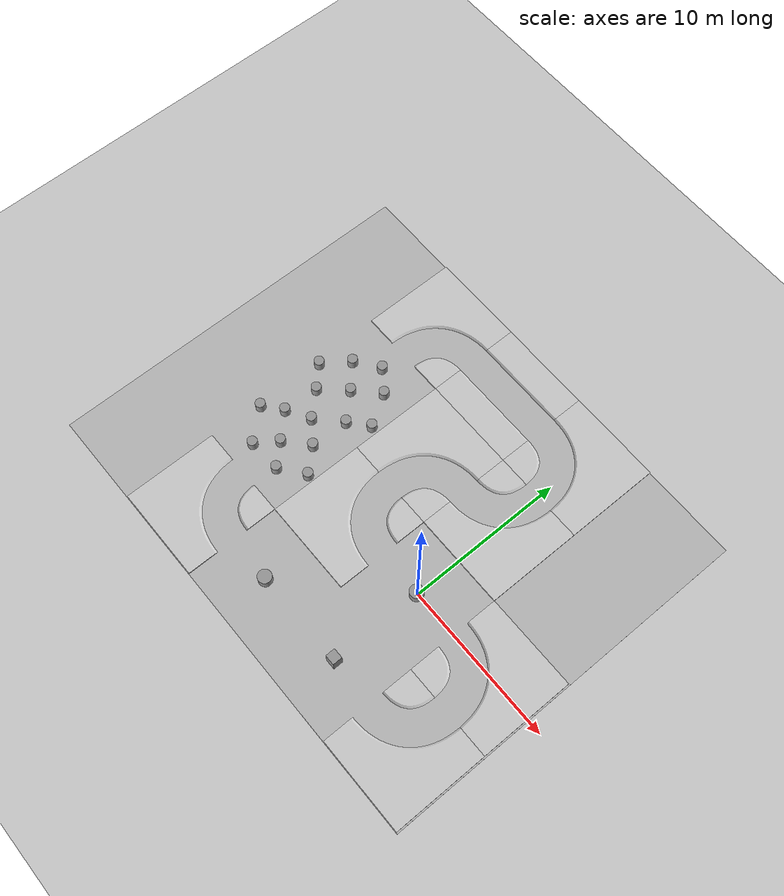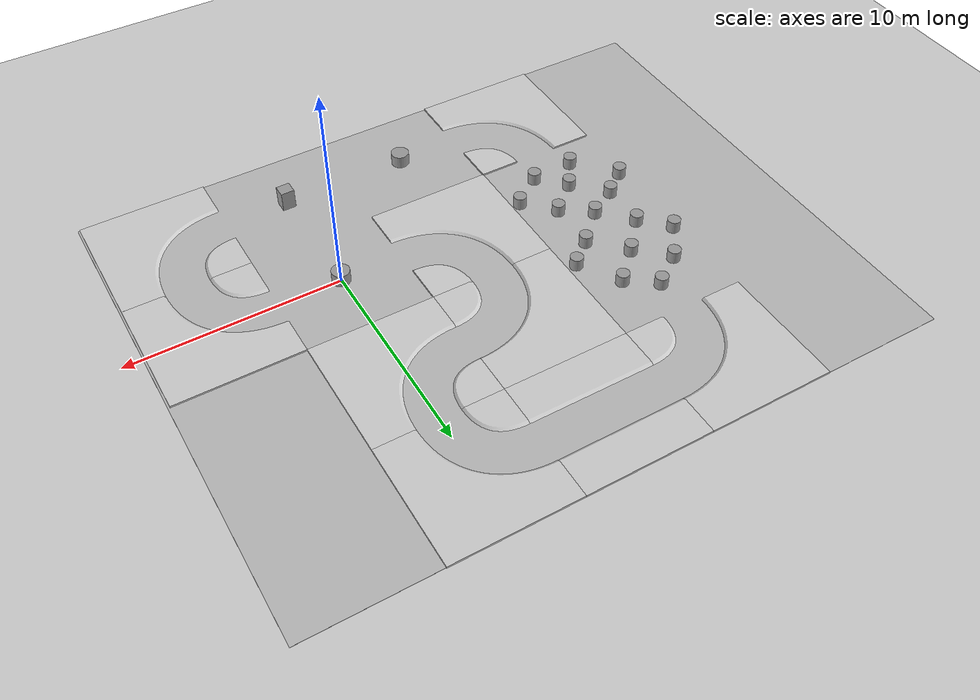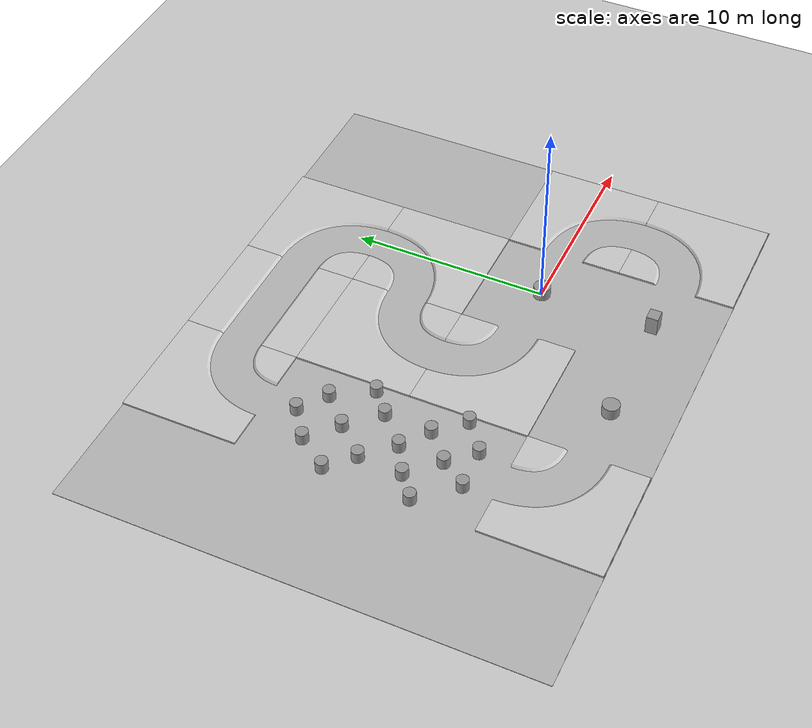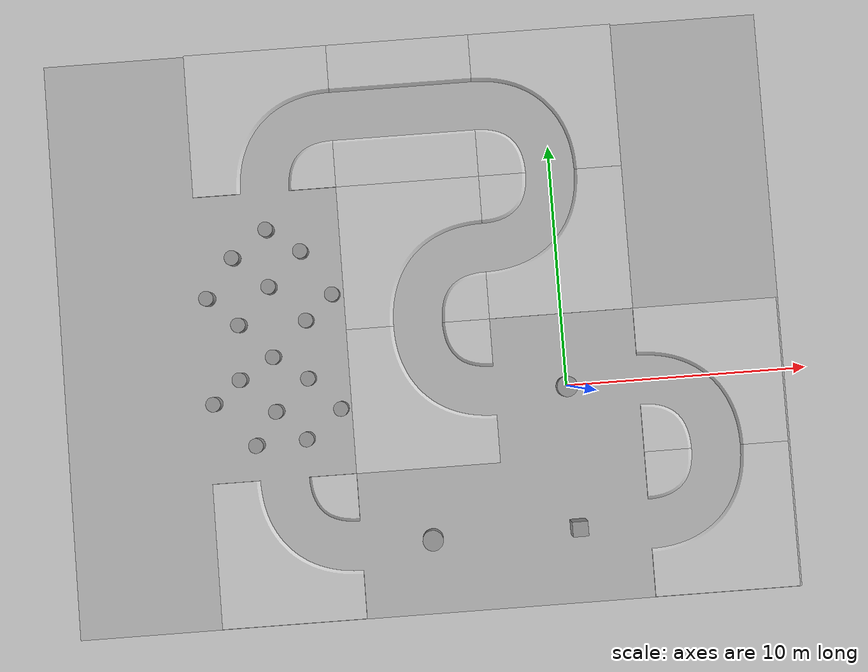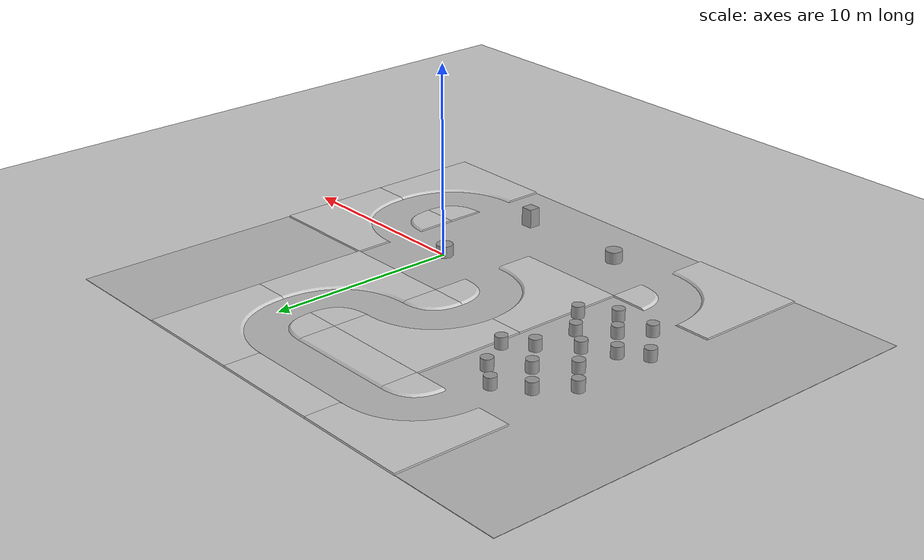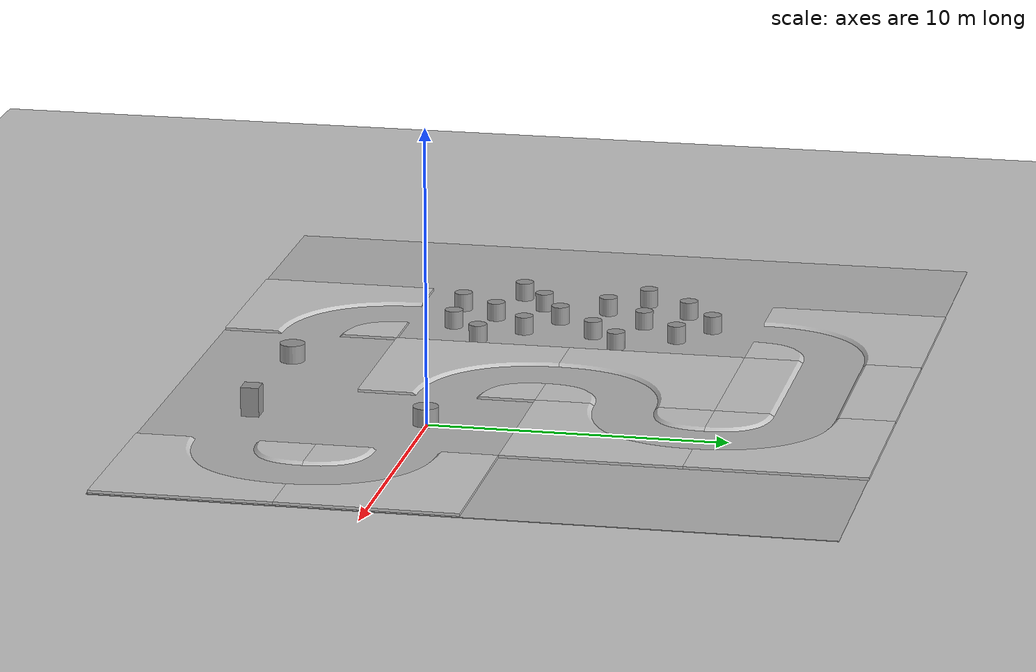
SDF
<sdf version="1.6">
 <world name="default">
  <light name="sun" type="directional">
   <pose>0 0 10 0 -0 0</pose>
   <diffuse>0.8 0.8 0.8 1</diffuse>
   <specular>0.2 0.2 0.2 1</specular>
   <attenuation>
    <range>1000</range>
    <constant>0.9</constant>
    <linear>0.01</linear>
    <quadratic>0.001</quadratic>
   </attenuation>
   <direction>-0.5 0.1 -0.9</direction>
  </light>
  <model name="ground_plane">
   <pose>0 0 -0.01 0 -0 0</pose>
   <static>1</static>
   <link name="link">
    <collision name="collision">
     <geometry><plane><normal>0 0 1</normal><size>100 100</size></plane></geometry>
     <surface>
      <contact><collide_bitmask>65535</collide_bitmask></contact>
      <friction><ode><mu>1</mu><mu2>1</mu2></ode></friction>
     </surface>
    </collision>
    <visual name="visual">
     <cast_shadows>0</cast_shadows>
     <geometry><plane><normal>0 0 1</normal><size>100 100</size></plane></geometry>
     <material>
      <script><uri>file://media/materials/scripts/gazebo.material</uri><name>Gazebo/Grey</name></script>
     </material>
    </visual>
   </link>
  </model>
  <gravity>0 0 -9.8</gravity>
  <magnetic_field>6e-06 2.3e-05 -4.2e-05</magnetic_field>
  <atmosphere type="adiabatic"/>
  <physics name="default_physics" default="0" type="ode">
   <max_step_size>0.001</max_step_size>
   <real_time_factor>1</real_time_factor>
   <real_time_update_rate>1000</real_time_update_rate>
  </physics>
  <scene><ambient>0.4 0.4 0.4 1</ambient><background>0.7 0.7 0.7 1</background><shadows>1</shadows></scene>
  <spherical_coordinates>
   <surface_model>EARTH_WGS84</surface_model>
   <latitude_deg>0</latitude_deg>
   <longitude_deg>0</longitude_deg>
   <elevation>0</elevation>
   <heading_deg>0</heading_deg>
  </spherical_coordinates>
  <model name="turn_block">
   <static>1</static>
   <link name="turn_block">
    <collision name="collision">
     <geometry><mesh><uri>model://turn_block/meshes/turn_block.dae</uri><scale>1 1 1</scale></mesh></geometry>
    </collision>
    <visual name="visual">
     <geometry><mesh><uri>model://turn_block/meshes/turn_block.dae</uri><scale>1 1 1</scale></mesh></geometry>
     <material>
      <ambient>0.7 0.7 0.7 1</ambient>
      <diffuse>0.8 0.8 0.8 1</diffuse>
      <specular>0.1 0.1 0.1 1</specular>
      <emissive>0 0 0 0</emissive>
     </material>
    </visual>
   </link>
   <pose>-6 0 0 0 -0 0</pose>
  </model>
  <model name="turn_block_0">
   <static>1</static>
   <link name="turn_block">
    <collision name="collision">
     <geometry><mesh><uri>model://turn_block/meshes/turn_block.dae</uri><scale>1 1 1</scale></mesh></geometry>
    </collision>
    <visual name="visual">
     <geometry><mesh><uri>model://turn_block/meshes/turn_block.dae</uri><scale>1 1 1</scale></mesh></geometry>
     <material>
      <ambient>0.7 0.7 0.7 1</ambient>
      <diffuse>0.8 0.8 0.8 1</diffuse>
      <specular>0.1 0.1 0.1 1</specular>
      <emissive>0 0 0 0</emissive>
     </material>
    </visual>
   </link>
   <pose>-6 6 0 0 0 -1.5707</pose>
  </model>
  <model name="turn_block_1">
   <static>1</static>
   <link name="turn_block">
    <collision name="collision">
     <geometry><mesh><uri>model://turn_block/meshes/turn_block.dae</uri><scale>1 1 1</scale></mesh></geometry>
    </collision>
    <visual name="visual">
     <geometry><mesh><uri>model://turn_block/meshes/turn_block.dae</uri><scale>1 1 1</scale></mesh></geometry>
     <material>
      <ambient>0.7 0.7 0.7 1</ambient>
      <diffuse>0.8 0.8 0.8 1</diffuse>
      <specular>0.1 0.1 0.1 1</specular>
      <emissive>0 0 0 0</emissive>
     </material>
    </visual>
   </link>
   <pose>0 6 0 0 -0 1.5707</pose>
  </model>
  <model name="straight_block">
   <static>1</static>
   <link name="straight_block">
    <collision name="collision">
     <geometry>
      <mesh><uri>model://straight_block/meshes/straight_block.dae</uri><scale>1 1 1</scale></mesh>
     </geometry>
    </collision>
    <visual name="visual">
     <geometry>
      <mesh><uri>model://straight_block/meshes/straight_block.dae</uri><scale>1 1 1</scale></mesh>
     </geometry>
     <material>
      <ambient>0.7 0.7 0.7 1</ambient>
      <diffuse>0.8 0.8 0.8 1</diffuse>
      <specular>0.1 0.1 0.1 1</specular>
      <emissive>0 0 0 0</emissive>
     </material>
    </visual>
   </link>
   <pose>-6 12 0 0 -0 3.14159</pose>
  </model>
  <model name="unit_cylinder">
   <pose>-0.026888 -0.042582 0.313536 0 -0 0</pose>
   <link name="link">
    <inertial>
     <mass>1</mass>
     <inertia><ixx>0.145833</ixx><ixy>0</ixy><ixz>0</ixz><iyy>0.145833</iyy><iyz>0</iyz><izz>0.125</izz></inertia>
    </inertial>
    <collision name="collision">
     <geometry><cylinder><radius>0.428545</radius><length>0.627091</length></cylinder></geometry>
    </collision>
    <visual name="visual">
     <geometry><cylinder><radius>0.428545</radius><length>0.627091</length></cylinder></geometry>
     <material>
      <script><name>Gazebo/Grey</name><uri>file://media/materials/scripts/gazebo.material</uri></script>
     </material>
    </visual>
   </link>
  </model>
  <model name="turn_block_2">
   <static>1</static>
   <link name="turn_block">
    <collision name="collision">
     <geometry><mesh><uri>model://turn_block/meshes/turn_block.dae</uri><scale>1 1 1</scale></mesh></geometry>
    </collision>
    <visual name="visual">
     <geometry><mesh><uri>model://turn_block/meshes/turn_block.dae</uri><scale>1 1 1</scale></mesh></geometry>
     <material>
      <ambient>0.7 0.7 0.7 1</ambient>
      <diffuse>0.8 0.8 0.8 1</diffuse>
      <specular>0.1 0.1 0.1 1</specular>
      <emissive>0 0 0 0</emissive>
     </material>
    </visual>
   </link>
   <pose>6 0 0 0 -0 3.14159</pose>
  </model>
  <model name="turn_block_3">
   <static>1</static>
   <link name="turn_block">
    <collision name="collision">
     <geometry><mesh><uri>model://turn_block/meshes/turn_block.dae</uri><scale>1 1 1</scale></mesh></geometry>
    </collision>
    <visual name="visual">
     <geometry><mesh><uri>model://turn_block/meshes/turn_block.dae</uri><scale>1 1 1</scale></mesh></geometry>
     <material>
      <ambient>0.7 0.7 0.7 1</ambient>
      <diffuse>0.8 0.8 0.8 1</diffuse>
      <specular>0.1 0.1 0.1 1</specular>
      <emissive>0 0 0 0</emissive>
     </material>
    </visual>
   </link>
   <pose>6 -6 0 0 -0 1.5707</pose>
  </model>
  <model name="turn_block_4">
   <static>1</static>
   <link name="turn_block">
    <collision name="collision">
     <geometry><mesh><uri>model://turn_block/meshes/turn_block.dae</uri><scale>1 1 1</scale></mesh></geometry>
    </collision>
    <visual name="visual">
     <geometry><mesh><uri>model://turn_block/meshes/turn_block.dae</uri><scale>1 1 1</scale></mesh></geometry>
     <material>
      <ambient>0.7 0.7 0.7 1</ambient>
      <diffuse>0.8 0.8 0.8 1</diffuse>
      <specular>0.1 0.1 0.1 1</specular>
      <emissive>0 0 0 0</emissive>
     </material>
    </visual>
   </link>
   <pose>-12 -6 0 0 -0 0</pose>
  </model>
  <model name="unit_box">
   <pose>0.012751 -5.86109 0.499996 7e-06 7e-06 0.009645</pose>
   <link name="link">
    <inertial>
     <mass>1</mass>
     <inertia>
      <ixx>0.166667</ixx>
      <ixy>0</ixy>
      <ixz>0</ixz>
      <iyy>0.166667</iyy>
      <iyz>0</iyz>
      <izz>0.166667</izz>
     </inertia>
    </inertial>
    <collision name="collision"><geometry><box><size>0.64607 0.606298 1</size></box></geometry></collision>
    <visual name="visual">
     <geometry><box><size>0.64607 0.606298 1</size></box></geometry>
     <material>
      <script><name>Gazebo/Grey</name><uri>file://media/materials/scripts/gazebo.material</uri></script>
     </material>
    </visual>
   </link>
  </model>
  <model name="turn_block_5">
   <static>1</static>
   <link name="turn_block">
    <collision name="collision">
     <geometry><mesh><uri>model://turn_block/meshes/turn_block.dae</uri><scale>1 1 1</scale></mesh></geometry>
    </collision>
    <visual name="visual">
     <geometry><mesh><uri>model://turn_block/meshes/turn_block.dae</uri><scale>1 1 1</scale></mesh></geometry>
     <material>
      <ambient>0.7 0.7 0.7 1</ambient>
      <diffuse>0.8 0.8 0.8 1</diffuse>
      <specular>0.1 0.1 0.1 1</specular>
      <emissive>0 0 0 0</emissive>
     </material>
    </visual>
   </link>
   <pose>0 12 0 0 0 -3.14159</pose>
  </model>
  <model name="turn_block_6">
   <static>1</static>
   <link name="turn_block">
    <collision name="collision">
     <geometry><mesh><uri>model://turn_block/meshes/turn_block.dae</uri><scale>1 1 1</scale></mesh></geometry>
    </collision>
    <visual name="visual">
     <geometry><mesh><uri>model://turn_block/meshes/turn_block.dae</uri><scale>1 1 1</scale></mesh></geometry>
     <material>
      <ambient>0.7 0.7 0.7 1</ambient>
      <diffuse>0.8 0.8 0.8 1</diffuse>
      <specular>0.1 0.1 0.1 1</specular>
      <emissive>0 0 0 0</emissive>
     </material>
    </visual>
   </link>
   <pose>-12 12 0 0 0 -1.5707</pose>
  </model>
  <model name="unit_cylinder_clone">
   <pose>-6.02392 -5.9326 0.313536 0 -0 0</pose>
   <link name="link">
    <inertial>
     <mass>1</mass>
     <inertia><ixx>0.145833</ixx><ixy>0</ixy><ixz>0</ixz><iyy>0.145833</iyy><iyz>0</iyz><izz>0.125</izz></inertia>
    </inertial>
    <collision name="collision">
     <geometry><cylinder><radius>0.428545</radius><length>0.627091</length></cylinder></geometry>
    </collision>
    <visual name="visual">
     <geometry><cylinder><radius>0.428545</radius><length>0.627091</length></cylinder></geometry>
     <material>
      <script><name>Gazebo/Grey</name><uri>file://media/materials/scripts/gazebo.material</uri></script>
     </material>
    </visual>
   </link>
  </model>
  <model name="unit_cylinder_clone_0">
   <pose>-12.0029 7.38383 0.313543 1e-06 1e-06 0</pose>
   <link name="link">
    <inertial>
     <mass>1</mass>
     <inertia><ixx>0.145833</ixx><ixy>0</ixy><ixz>0</ixz><iyy>0.145833</iyy><iyz>0</iyz><izz>0.125</izz></inertia>
    </inertial>
    <collision name="collision">
     <geometry><cylinder><radius>0.308912</radius><length>0.627091</length></cylinder></geometry>
    </collision>
    <visual name="visual">
     <geometry><cylinder><radius>0.308912</radius><length>0.627091</length></cylinder></geometry>
     <material>
      <script><name>Gazebo/Grey</name><uri>file://media/materials/scripts/gazebo.material</uri></script>
     </material>
    </visual>
   </link>
  </model>
  <model name="unit_cylinder_clone_0_clone">
   <pose>-10.6322 6.38158 0.313545 0 -0 0</pose>
   <link name="link">
    <inertial>
     <mass>1</mass>
     <inertia><ixx>0.145833</ixx><ixy>0</ixy><ixz>0</ixz><iyy>0.145833</iyy><iyz>0</iyz><izz>0.125</izz></inertia>
    </inertial>
    <collision name="collision">
     <geometry><cylinder><radius>0.308912</radius><length>0.627091</length></cylinder></geometry>
    </collision>
    <visual name="visual">
     <geometry><cylinder><radius>0.308912</radius><length>0.627091</length></cylinder></geometry>
     <material>
      <script><name>Gazebo/Grey</name><uri>file://media/materials/scripts/gazebo.material</uri></script>
     </material>
    </visual>
   </link>
  </model>
  <model name="unit_cylinder_clone_0_clone_0">
   <pose>-13.4768 6.30625 0.313536 0 -0 0</pose>
   <link name="link">
    <inertial>
     <mass>1</mass>
     <inertia><ixx>0.145833</ixx><ixy>0</ixy><ixz>0</ixz><iyy>0.145833</iyy><iyz>0</iyz><izz>0.125</izz></inertia>
    </inertial>
    <collision name="collision">
     <geometry><cylinder><radius>0.308912</radius><length>0.627091</length></cylinder></geometry>
    </collision>
    <visual name="visual">
     <geometry><cylinder><radius>0.308912</radius><length>0.627091</length></cylinder></geometry>
     <material>
      <script><name>Gazebo/Grey</name><uri>file://media/materials/scripts/gazebo.material</uri></script>
     </material>
    </visual>
   </link>
  </model>
  <model name="unit_cylinder_clone_0_clone_1">
   <pose>-12.0501 5.00167 0.313545 0 -0 0</pose>
   <link name="link">
    <inertial>
     <mass>1</mass>
     <inertia><ixx>0.145833</ixx><ixy>0</ixy><ixz>0</ixz><iyy>0.145833</iyy><iyz>0</iyz><izz>0.125</izz></inertia>
    </inertial>
    <collision name="collision">
     <geometry><cylinder><radius>0.308912</radius><length>0.627091</length></cylinder></geometry>
    </collision>
    <visual name="visual">
     <geometry><cylinder><radius>0.308912</radius><length>0.627091</length></cylinder></geometry>
     <material>
      <script><name>Gazebo/Grey</name><uri>file://media/materials/scripts/gazebo.material</uri></script>
     </material>
    </visual>
   </link>
  </model>
  <model name="unit_cylinder_clone_0_clone_2">
   <pose>-10.6054 3.49335 0.313536 0 -0 0</pose>
   <link name="link">
    <inertial>
     <mass>1</mass>
     <inertia><ixx>0.145833</ixx><ixy>0</ixy><ixz>0</ixz><iyy>0.145833</iyy><iyz>0</iyz><izz>0.125</izz></inertia>
    </inertial>
    <collision name="collision">
     <geometry><cylinder><radius>0.308912</radius><length>0.627091</length></cylinder></geometry>
    </collision>
    <visual name="visual">
     <geometry><cylinder><radius>0.308912</radius><length>0.627091</length></cylinder></geometry>
     <material>
      <script><name>Gazebo/Grey</name><uri>file://media/materials/scripts/gazebo.material</uri></script>
     </material>
    </visual>
   </link>
  </model>
  <model name="unit_cylinder_clone_0_clone_3">
   <pose>-13.4058 3.50326 0.313536 0 -0 0</pose>
   <link name="link">
    <inertial>
     <mass>1</mass>
     <inertia><ixx>0.145833</ixx><ixy>0</ixy><ixz>0</ixz><iyy>0.145833</iyy><iyz>0</iyz><izz>0.125</izz></inertia>
    </inertial>
    <collision name="collision">
     <geometry><cylinder><radius>0.308912</radius><length>0.627091</length></cylinder></geometry>
    </collision>
    <visual name="visual">
     <geometry><cylinder><radius>0.308912</radius><length>0.627091</length></cylinder></geometry>
     <material>
      <script><name>Gazebo/Grey</name><uri>file://media/materials/scripts/gazebo.material</uri></script>
     </material>
    </visual>
   </link>
  </model>
  <model name="unit_cylinder_clone_0_clone_4">
   <pose>-12.0669 2.07856 0.313545 0 -0 0</pose>
   <link name="link">
    <inertial>
     <mass>1</mass>
     <inertia><ixx>0.145833</ixx><ixy>0</ixy><ixz>0</ixz><iyy>0.145833</iyy><iyz>0</iyz><izz>0.125</izz></inertia>
    </inertial>
    <collision name="collision">
     <geometry><cylinder><radius>0.308912</radius><length>0.627091</length></cylinder></geometry>
    </collision>
    <visual name="visual">
     <geometry><cylinder><radius>0.308912</radius><length>0.627091</length></cylinder></geometry>
     <material>
      <script><name>Gazebo/Grey</name><uri>file://media/materials/scripts/gazebo.material</uri></script>
     </material>
    </visual>
   </link>
  </model>
  <model name="unit_cylinder_clone_0_clone_5">
   <pose>-9.44752 4.49672 0.313536 0 -0 0</pose>
   <link name="link">
    <inertial>
     <mass>1</mass>
     <inertia><ixx>0.145833</ixx><ixy>0</ixy><ixz>0</ixz><iyy>0.145833</iyy><iyz>0</iyz><izz>0.125</izz></inertia>
    </inertial>
    <collision name="collision">
     <geometry><cylinder><radius>0.308912</radius><length>0.627091</length></cylinder></geometry>
    </collision>
    <visual name="visual">
     <geometry><cylinder><radius>0.308912</radius><length>0.627091</length></cylinder></geometry>
     <material>
      <script><name>Gazebo/Grey</name><uri>file://media/materials/scripts/gazebo.material</uri></script>
     </material>
    </visual>
   </link>
  </model>
  <model name="unit_cylinder_clone_0_clone_6">
   <pose>-14.6457 4.69949 0.313545 0 -0 0</pose>
   <link name="link">
    <inertial>
     <mass>1</mass>
     <inertia><ixx>0.145833</ixx><ixy>0</ixy><ixz>0</ixz><iyy>0.145833</iyy><iyz>0</iyz><izz>0.125</izz></inertia>
    </inertial>
    <collision name="collision">
     <geometry><cylinder><radius>0.308912</radius><length>0.627091</length></cylinder></geometry>
    </collision>
    <visual name="visual">
     <geometry><cylinder><radius>0.308912</radius><length>0.627091</length></cylinder></geometry>
     <material>
      <script><name>Gazebo/Grey</name><uri>file://media/materials/scripts/gazebo.material</uri></script>
     </material>
    </visual>
   </link>
  </model>
  <model name="unit_cylinder_clone_0_clone_7">
   <pose>-10.6781 1.08603 0.313536 0 -0 0</pose>
   <link name="link">
    <inertial>
     <mass>1</mass>
     <inertia><ixx>0.145833</ixx><ixy>0</ixy><ixz>0</ixz><iyy>0.145833</iyy><iyz>0</iyz><izz>0.125</izz></inertia>
    </inertial>
    <collision name="collision">
     <geometry><cylinder><radius>0.308912</radius><length>0.627091</length></cylinder></geometry>
    </collision>
    <visual name="visual">
     <geometry><cylinder><radius>0.308912</radius><length>0.627091</length></cylinder></geometry>
     <material>
      <script><name>Gazebo/Grey</name><uri>file://media/materials/scripts/gazebo.material</uri></script>
     </material>
    </visual>
   </link>
  </model>
  <model name="unit_cylinder_clone_0_clone_8">
   <pose>-13.5002 1.23668 0.313545 0 -0 0</pose>
   <link name="link">
    <inertial>
     <mass>1</mass>
     <inertia><ixx>0.145833</ixx><ixy>0</ixy><ixz>0</ixz><iyy>0.145833</iyy><iyz>0</iyz><izz>0.125</izz></inertia>
    </inertial>
    <collision name="collision">
     <geometry><cylinder><radius>0.308912</radius><length>0.627091</length></cylinder></geometry>
    </collision>
    <visual name="visual">
     <geometry><cylinder><radius>0.308912</radius><length>0.627091</length></cylinder></geometry>
     <material>
      <script><name>Gazebo/Grey</name><uri>file://media/materials/scripts/gazebo.material</uri></script>
     </material>
    </visual>
   </link>
  </model>
  <model name="unit_cylinder_clone_0_clone_9">
   <pose>-9.4092 -0.262056 0.313536 0 -0 0</pose>
   <link name="link">
    <inertial>
     <mass>1</mass>
     <inertia><ixx>0.145833</ixx><ixy>0</ixy><ixz>0</ixz><iyy>0.145833</iyy><iyz>0</iyz><izz>0.125</izz></inertia>
    </inertial>
    <collision name="collision">
     <geometry><cylinder><radius>0.308912</radius><length>0.627091</length></cylinder></geometry>
    </collision>
    <visual name="visual">
     <geometry><cylinder><radius>0.308912</radius><length>0.627091</length></cylinder></geometry>
     <material>
      <script><name>Gazebo/Grey</name><uri>file://media/materials/scripts/gazebo.material</uri></script>
     </material>
    </visual>
   </link>
  </model>
  <model name="unit_cylinder_clone_0_clone_10">
   <pose>-14.6513 0.31001 0.313545 0 -0 0</pose>
   <link name="link">
    <inertial>
     <mass>1</mass>
     <inertia><ixx>0.145833</ixx><ixy>0</ixy><ixz>0</ixz><iyy>0.145833</iyy><iyz>0</iyz><izz>0.125</izz></inertia>
    </inertial>
    <collision name="collision">
     <geometry><cylinder><radius>0.308912</radius><length>0.627091</length></cylinder></geometry>
    </collision>
    <visual name="visual">
     <geometry><cylinder><radius>0.308912</radius><length>0.627091</length></cylinder></geometry>
     <material>
      <script><name>Gazebo/Grey</name><uri>file://media/materials/scripts/gazebo.material</uri></script>
     </material>
    </visual>
   </link>
  </model>
  <model name="unit_cylinder_clone_0_clone_11">
   <pose>-12.0922 -0.178132 0.313536 0 -0 0</pose>
   <link name="link">
    <inertial>
     <mass>1</mass>
     <inertia><ixx>0.145833</ixx><ixy>0</ixy><ixz>0</ixz><iyy>0.145833</iyy><iyz>0</iyz><izz>0.125</izz></inertia>
    </inertial>
    <collision name="collision">
     <geometry><cylinder><radius>0.308912</radius><length>0.627091</length></cylinder></geometry>
    </collision>
    <visual name="visual">
     <geometry><cylinder><radius>0.308912</radius><length>0.627091</length></cylinder></geometry>
     <material>
      <script><name>Gazebo/Grey</name><uri>file://media/materials/scripts/gazebo.material</uri></script>
     </material>
    </visual>
   </link>
  </model>
  <model name="unit_cylinder_clone_0_clone_12">
   <pose>-10.907 -1.40975 0.313545 0 -0 0</pose>
   <link name="link">
    <inertial>
     <mass>1</mass>
     <inertia><ixx>0.145833</ixx><ixy>0</ixy><ixz>0</ixz><iyy>0.145833</iyy><iyz>0</iyz><izz>0.125</izz></inertia>
    </inertial>
    <collision name="collision">
     <geometry><cylinder><radius>0.308912</radius><length>0.627091</length></cylinder></geometry>
    </collision>
    <visual name="visual">
     <geometry><cylinder><radius>0.308912</radius><length>0.627091</length></cylinder></geometry>
     <material>
      <script><name>Gazebo/Grey</name><uri>file://media/materials/scripts/gazebo.material</uri></script>
     </material>
    </visual>
   </link>
  </model>
  <model name="unit_cylinder_clone_0_clone_13">
   <pose>-13.0081 -1.51808 0.313536 0 -0 0</pose>
   <link name="link">
    <inertial>
     <mass>1</mass>
     <inertia><ixx>0.145833</ixx><ixy>0</ixy><ixz>0</ixz><iyy>0.145833</iyy><iyz>0</iyz><izz>0.125</izz></inertia>
    </inertial>
    <collision name="collision">
     <geometry><cylinder><radius>0.308912</radius><length>0.627091</length></cylinder></geometry>
    </collision>
    <visual name="visual">
     <geometry><cylinder><radius>0.308912</radius><length>0.627091</length></cylinder></geometry>
     <material>
      <script><name>Gazebo/Grey</name><uri>file://media/materials/scripts/gazebo.material</uri></script>
     </material>
    </visual>
   </link>
  </model>
  <model name="training_track_plane">
   <pose>-5.90804 2.96903 0 0 0 -3.14159</pose>
   <static>1</static>
   <link name="link">
    <collision name="collision">
     <geometry><plane><normal>0 0 1</normal><size>30 24</size></plane></geometry>
     <surface>
      <contact><collide_bitmask>65535</collide_bitmask></contact>
      <friction><ode><mu>100</mu><mu2>50</mu2></ode></friction>
     </surface>
    </collision>
    <visual name="visual">
     <cast_shadows>0</cast_shadows>
     <geometry><plane><normal>0 0 1</normal><size>30 24</size></plane></geometry>
     <material>
      <script>
       <uri>model://training_track_plane/materials/scripts</uri>
       <uri>model://training_track_plane/materials/textures</uri>
       <name>TrainingTrackPlane</name>
      </script>
     </material>
    </visual>
   </link>
  </model>
 </world>
</sdf>
